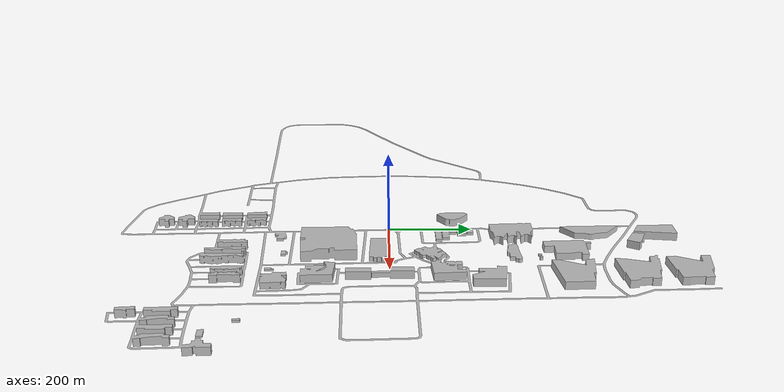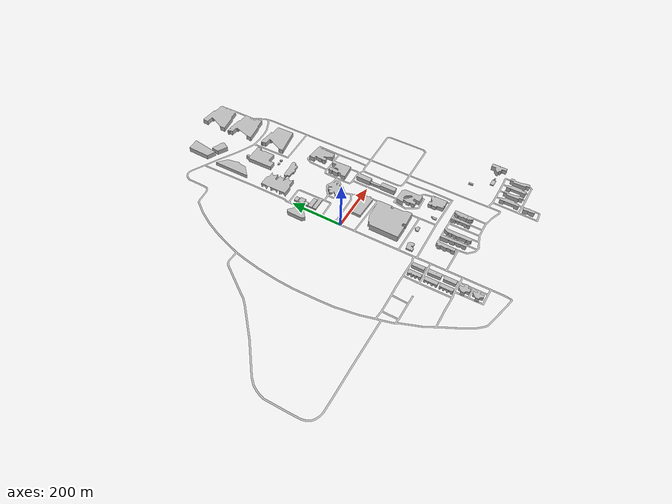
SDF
<?xml version="1.0" ?>
<sdf version="1.8">
  <world name="campus_world">
    <physics name="1ms" type="ignored">
      <max_step_size>0.001</max_step_size>
      <real_time_factor>1.0</real_time_factor>
    </physics>
    <plugin
      filename="gz-sim-physics-system"
      name="gz::sim::systems::Physics">
    </plugin>
    <plugin filename="gz-sim-imu-system" name="gz::sim::systems::Imu"/>

    <plugin
      filename="gz-sim-sensors-system"
      name="gz::sim::systems::Sensors">
      <render_engine>ogre2</render_engine>
    </plugin>

    <plugin
      filename="gz-sim-user-commands-system"
      name="gz::sim::systems::UserCommands">
    </plugin>
    <plugin
      filename="gz-sim-scene-broadcaster-system"
      name="gz::sim::systems::SceneBroadcaster">
    </plugin>

    <light type="directional" name="sun">
      <cast_shadows>true</cast_shadows>
      <pose>0 0 10 0 0 0</pose>
      <diffuse>0.8 0.8 0.8 1</diffuse>
      <specular>0.2 0.2 0.2 1</specular>
      <attenuation>
        <range>1000</range>
        <constant>0.9</constant>
        <linear>0.01</linear>
        <quadratic>0.001</quadratic>
      </attenuation>
      <direction>-0.5 0.1 -0.9</direction>
    </light>

    <!-- GROUND PLANE REMOVED: Now the cart will fall if it drives off the map! -->

    <model name="campus_map">
      <static>true</static>
      <!-- Rotate 90 degrees around X-axis to lay it flat (1.5708 radians) -->
      <pose>0 0 0 1.570796 0 0</pose>
      <link name="link">
        <visual name="visual">
          <geometry>
            <mesh>
              <scale>1 1 1</scale>
              <uri>model://saye_description/worlds/map1.obj</uri>
            </mesh>
          </geometry>
        </visual>
        <collision name="collision">
          <geometry>
            <mesh>
              <scale>1 1 1</scale>
              <uri>model://saye_description/worlds/map1.obj</uri>
            </mesh>
          </geometry>
        </collision>
      </link>
    </model>
  </world>
</sdf>
